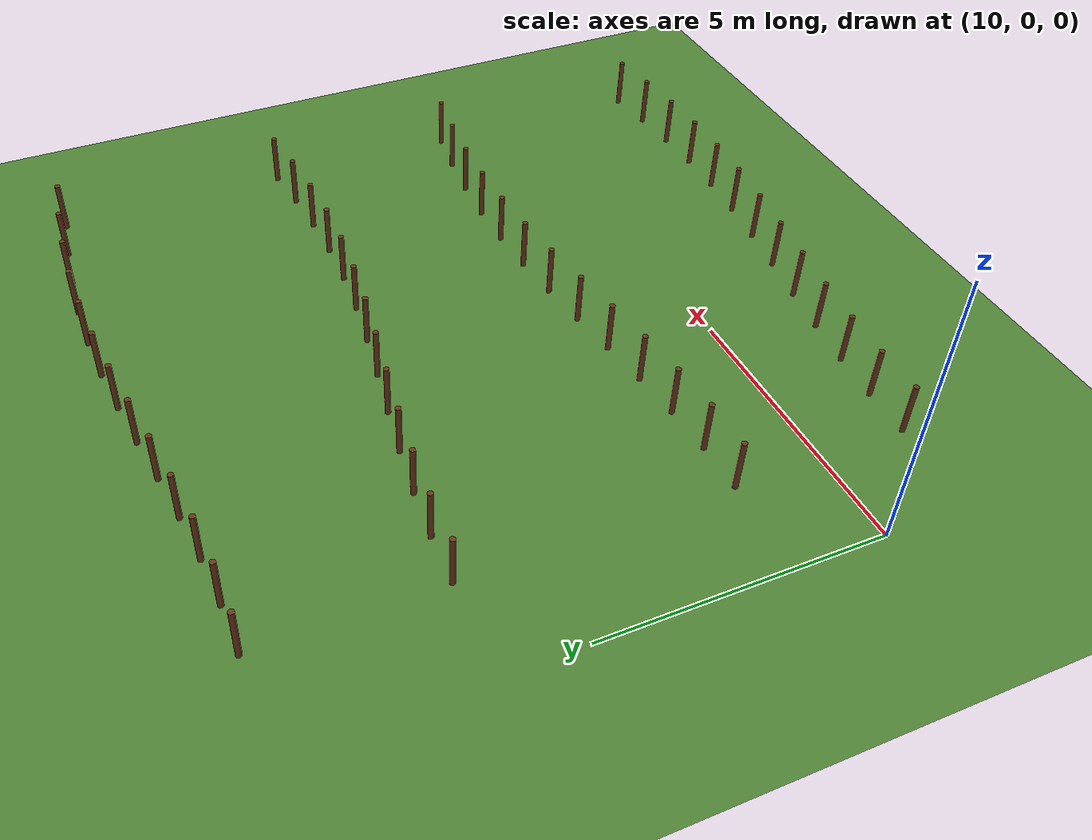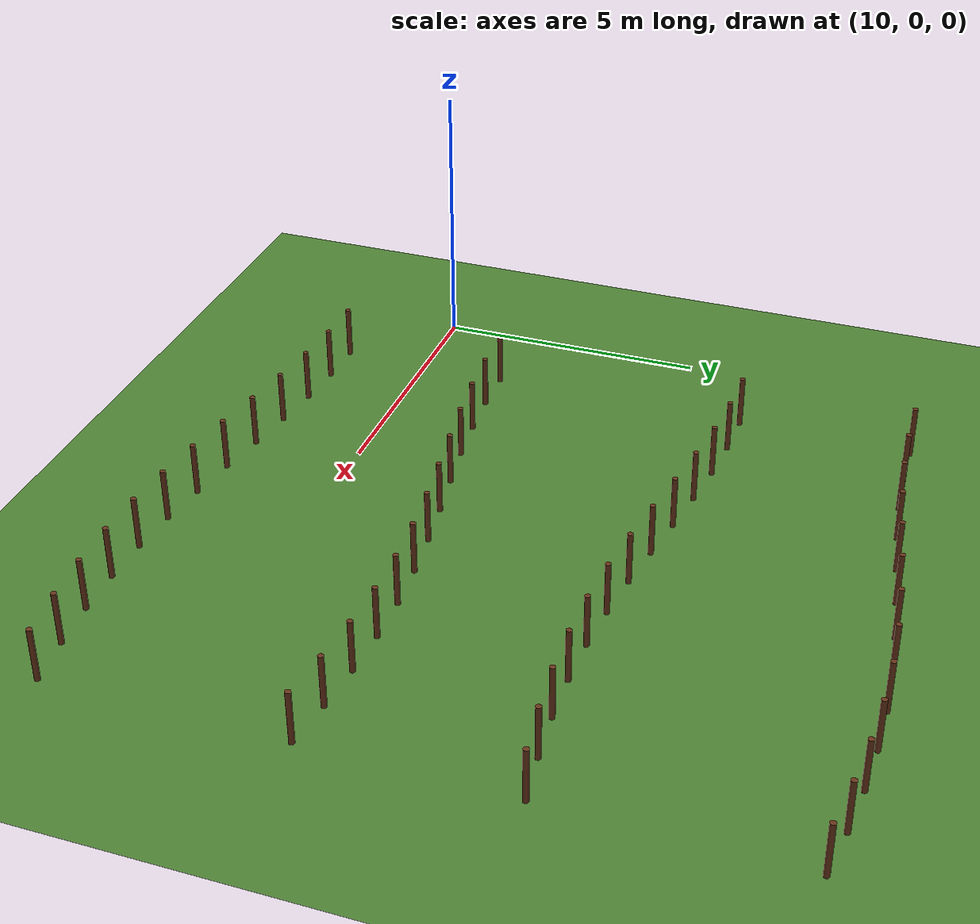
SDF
<sdf version="1.6">
 <world name="vineyard_variable">
  <model name="ground_plane">
   <static>true</static>
   <link name="link">
    <collision name="collision">
     <geometry><plane><normal>0 0 1</normal><size>100 100</size></plane></geometry>
     <surface><friction><ode><mu>100</mu><mu2>50</mu2></ode></friction></surface>
    </collision>
    <visual name="visual">
     <cast_shadows>false</cast_shadows>
     <geometry><plane><normal>0 0 1</normal><size>100 100</size></plane></geometry>
     <material><ambient>0.3 0.5 0.2 1</ambient><diffuse>0.3 0.5 0.2 1</diffuse></material>
    </visual>
   </link>
  </model>
  <model name="vine_13">
   <static>true</static>
   <pose>11.700000000000001 -1.6002097908690864 0.5 0 0 0</pose>
   <link name="link">
    <collision name="collision">
     <geometry><cylinder><radius>0.05</radius><length>1.0</length></cylinder></geometry>
    </collision>
    <visual name="visual">
     <geometry><cylinder><radius>0.05</radius><length>1.0</length></cylinder></geometry>
     <material><ambient>0.4 0.2 0.1 1</ambient><diffuse>0.4 0.2 0.1 1</diffuse></material>
    </visual>
   </link>
  </model>
  <model name="vine_14">
   <static>true</static>
   <pose>12.6 -1.6212744897629563 0.5 0 0 0</pose>
   <link name="link">
    <collision name="collision">
     <geometry><cylinder><radius>0.05</radius><length>1.0</length></cylinder></geometry>
    </collision>
    <visual name="visual">
     <geometry><cylinder><radius>0.05</radius><length>1.0</length></cylinder></geometry>
     <material><ambient>0.4 0.2 0.1 1</ambient><diffuse>0.4 0.2 0.1 1</diffuse></material>
    </visual>
   </link>
  </model>
  <model name="vine_15">
   <static>true</static>
   <pose>13.5 -1.690894204977605 0.5 0 0 0</pose>
   <link name="link">
    <collision name="collision">
     <geometry><cylinder><radius>0.05</radius><length>1.0</length></cylinder></geometry>
    </collision>
    <visual name="visual">
     <geometry><cylinder><radius>0.05</radius><length>1.0</length></cylinder></geometry>
     <material><ambient>0.4 0.2 0.1 1</ambient><diffuse>0.4 0.2 0.1 1</diffuse></material>
    </visual>
   </link>
  </model>
  <model name="vine_16">
   <static>true</static>
   <pose>14.4 -1.8001432467532397 0.5 0 0 0</pose>
   <link name="link">
    <collision name="collision">
     <geometry><cylinder><radius>0.05</radius><length>1.0</length></cylinder></geometry>
    </collision>
    <visual name="visual">
     <geometry><cylinder><radius>0.05</radius><length>1.0</length></cylinder></geometry>
     <material><ambient>0.4 0.2 0.1 1</ambient><diffuse>0.4 0.2 0.1 1</diffuse></material>
    </visual>
   </link>
  </model>
  <model name="vine_17">
   <static>true</static>
   <pose>15.3 -1.9350151939139386 0.5 0 0 0</pose>
   <link name="link">
    <collision name="collision">
     <geometry><cylinder><radius>0.05</radius><length>1.0</length></cylinder></geometry>
    </collision>
    <visual name="visual">
     <geometry><cylinder><radius>0.05</radius><length>1.0</length></cylinder></geometry>
     <material><ambient>0.4 0.2 0.1 1</ambient><diffuse>0.4 0.2 0.1 1</diffuse></material>
    </visual>
   </link>
  </model>
  <model name="vine_18">
   <static>true</static>
   <pose>16.2 -2.0782186060402177 0.5 0 0 0</pose>
   <link name="link">
    <collision name="collision">
     <geometry><cylinder><radius>0.05</radius><length>1.0</length></cylinder></geometry>
    </collision>
    <visual name="visual">
     <geometry><cylinder><radius>0.05</radius><length>1.0</length></cylinder></geometry>
     <material><ambient>0.4 0.2 0.1 1</ambient><diffuse>0.4 0.2 0.1 1</diffuse></material>
    </visual>
   </link>
  </model>
  <model name="vine_19">
   <static>true</static>
   <pose>17.1 -2.211393895977172 0.5 0 0 0</pose>
   <link name="link">
    <collision name="collision">
     <geometry><cylinder><radius>0.05</radius><length>1.0</length></cylinder></geometry>
    </collision>
    <visual name="visual">
     <geometry><cylinder><radius>0.05</radius><length>1.0</length></cylinder></geometry>
     <material><ambient>0.4 0.2 0.1 1</ambient><diffuse>0.4 0.2 0.1 1</diffuse></material>
    </visual>
   </link>
  </model>
  <model name="vine_20">
   <static>true</static>
   <pose>18.0 -2.317467145539661 0.5 0 0 0</pose>
   <link name="link">
    <collision name="collision">
     <geometry><cylinder><radius>0.05</radius><length>1.0</length></cylinder></geometry>
    </collision>
    <visual name="visual">
     <geometry><cylinder><radius>0.05</radius><length>1.0</length></cylinder></geometry>
     <material><ambient>0.4 0.2 0.1 1</ambient><diffuse>0.4 0.2 0.1 1</diffuse></material>
    </visual>
   </link>
  </model>
  <model name="vine_21">
   <static>true</static>
   <pose>18.900000000000002 -2.382839090288167 0.5 0 0 0</pose>
   <link name="link">
    <collision name="collision">
     <geometry><cylinder><radius>0.05</radius><length>1.0</length></cylinder></geometry>
    </collision>
    <visual name="visual">
     <geometry><cylinder><radius>0.05</radius><length>1.0</length></cylinder></geometry>
     <material><ambient>0.4 0.2 0.1 1</ambient><diffuse>0.4 0.2 0.1 1</diffuse></material>
    </visual>
   </link>
  </model>
  <model name="vine_22">
   <static>true</static>
   <pose>19.8 -2.3991286316212297 0.5 0 0 0</pose>
   <link name="link">
    <collision name="collision">
     <geometry><cylinder><radius>0.05</radius><length>1.0</length></cylinder></geometry>
    </collision>
    <visual name="visual">
     <geometry><cylinder><radius>0.05</radius><length>1.0</length></cylinder></geometry>
     <material><ambient>0.4 0.2 0.1 1</ambient><diffuse>0.4 0.2 0.1 1</diffuse></material>
    </visual>
   </link>
  </model>
  <model name="vine_23">
   <static>true</static>
   <pose>20.7 -2.364247346858292 0.5 0 0 0</pose>
   <link name="link">
    <collision name="collision">
     <geometry><cylinder><radius>0.05</radius><length>1.0</length></cylinder></geometry>
    </collision>
    <visual name="visual">
     <geometry><cylinder><radius>0.05</radius><length>1.0</length></cylinder></geometry>
     <material><ambient>0.4 0.2 0.1 1</ambient><diffuse>0.4 0.2 0.1 1</diffuse></material>
    </visual>
   </link>
  </model>
  <model name="vine_24">
   <static>true</static>
   <pose>21.6 -2.2826672382943514 0.5 0 0 0</pose>
   <link name="link">
    <collision name="collision">
     <geometry><cylinder><radius>0.05</radius><length>1.0</length></cylinder></geometry>
    </collision>
    <visual name="visual">
     <geometry><cylinder><radius>0.05</radius><length>1.0</length></cylinder></geometry>
     <material><ambient>0.4 0.2 0.1 1</ambient><diffuse>0.4 0.2 0.1 1</diffuse></material>
    </visual>
   </link>
  </model>
  <model name="vine_25">
   <static>true</static>
   <pose>22.5 -2.164847394096703 0.5 0 0 0</pose>
   <link name="link">
    <collision name="collision">
     <geometry><cylinder><radius>0.05</radius><length>1.0</length></cylinder></geometry>
    </collision>
    <visual name="visual">
     <geometry><cylinder><radius>0.05</radius><length>1.0</length></cylinder></geometry>
     <material><ambient>0.4 0.2 0.1 1</ambient><diffuse>0.4 0.2 0.1 1</diffuse></material>
    </visual>
   </link>
  </model>
  <model name="vine_39">
   <static>true</static>
   <pose>11.700000000000001 1.6002097908690864 0.5 0 0 0</pose>
   <link name="link">
    <collision name="collision">
     <geometry><cylinder><radius>0.05</radius><length>1.0</length></cylinder></geometry>
    </collision>
    <visual name="visual">
     <geometry><cylinder><radius>0.05</radius><length>1.0</length></cylinder></geometry>
     <material><ambient>0.4 0.2 0.1 1</ambient><diffuse>0.4 0.2 0.1 1</diffuse></material>
    </visual>
   </link>
  </model>
  <model name="vine_40">
   <static>true</static>
   <pose>12.6 1.6212744897629565 0.5 0 0 0</pose>
   <link name="link">
    <collision name="collision">
     <geometry><cylinder><radius>0.05</radius><length>1.0</length></cylinder></geometry>
    </collision>
    <visual name="visual">
     <geometry><cylinder><radius>0.05</radius><length>1.0</length></cylinder></geometry>
     <material><ambient>0.4 0.2 0.1 1</ambient><diffuse>0.4 0.2 0.1 1</diffuse></material>
    </visual>
   </link>
  </model>
  <model name="vine_41">
   <static>true</static>
   <pose>13.5 1.6908942049776052 0.5 0 0 0</pose>
   <link name="link">
    <collision name="collision">
     <geometry><cylinder><radius>0.05</radius><length>1.0</length></cylinder></geometry>
    </collision>
    <visual name="visual">
     <geometry><cylinder><radius>0.05</radius><length>1.0</length></cylinder></geometry>
     <material><ambient>0.4 0.2 0.1 1</ambient><diffuse>0.4 0.2 0.1 1</diffuse></material>
    </visual>
   </link>
  </model>
  <model name="vine_42">
   <static>true</static>
   <pose>14.4 1.8001432467532394 0.5 0 0 0</pose>
   <link name="link">
    <collision name="collision">
     <geometry><cylinder><radius>0.05</radius><length>1.0</length></cylinder></geometry>
    </collision>
    <visual name="visual">
     <geometry><cylinder><radius>0.05</radius><length>1.0</length></cylinder></geometry>
     <material><ambient>0.4 0.2 0.1 1</ambient><diffuse>0.4 0.2 0.1 1</diffuse></material>
    </visual>
   </link>
  </model>
  <model name="vine_43">
   <static>true</static>
   <pose>15.3 1.9350151939139386 0.5 0 0 0</pose>
   <link name="link">
    <collision name="collision">
     <geometry><cylinder><radius>0.05</radius><length>1.0</length></cylinder></geometry>
    </collision>
    <visual name="visual">
     <geometry><cylinder><radius>0.05</radius><length>1.0</length></cylinder></geometry>
     <material><ambient>0.4 0.2 0.1 1</ambient><diffuse>0.4 0.2 0.1 1</diffuse></material>
    </visual>
   </link>
  </model>
  <model name="vine_44">
   <static>true</static>
   <pose>16.2 2.0782186060402177 0.5 0 0 0</pose>
   <link name="link">
    <collision name="collision">
     <geometry><cylinder><radius>0.05</radius><length>1.0</length></cylinder></geometry>
    </collision>
    <visual name="visual">
     <geometry><cylinder><radius>0.05</radius><length>1.0</length></cylinder></geometry>
     <material><ambient>0.4 0.2 0.1 1</ambient><diffuse>0.4 0.2 0.1 1</diffuse></material>
    </visual>
   </link>
  </model>
  <model name="vine_45">
   <static>true</static>
   <pose>17.1 2.2113938959771726 0.5 0 0 0</pose>
   <link name="link">
    <collision name="collision">
     <geometry><cylinder><radius>0.05</radius><length>1.0</length></cylinder></geometry>
    </collision>
    <visual name="visual">
     <geometry><cylinder><radius>0.05</radius><length>1.0</length></cylinder></geometry>
     <material><ambient>0.4 0.2 0.1 1</ambient><diffuse>0.4 0.2 0.1 1</diffuse></material>
    </visual>
   </link>
  </model>
  <model name="vine_46">
   <static>true</static>
   <pose>18.0 2.3174671455396614 0.5 0 0 0</pose>
   <link name="link">
    <collision name="collision">
     <geometry><cylinder><radius>0.05</radius><length>1.0</length></cylinder></geometry>
    </collision>
    <visual name="visual">
     <geometry><cylinder><radius>0.05</radius><length>1.0</length></cylinder></geometry>
     <material><ambient>0.4 0.2 0.1 1</ambient><diffuse>0.4 0.2 0.1 1</diffuse></material>
    </visual>
   </link>
  </model>
  <model name="vine_47">
   <static>true</static>
   <pose>18.900000000000002 2.382839090288167 0.5 0 0 0</pose>
   <link name="link">
    <collision name="collision">
     <geometry><cylinder><radius>0.05</radius><length>1.0</length></cylinder></geometry>
    </collision>
    <visual name="visual">
     <geometry><cylinder><radius>0.05</radius><length>1.0</length></cylinder></geometry>
     <material><ambient>0.4 0.2 0.1 1</ambient><diffuse>0.4 0.2 0.1 1</diffuse></material>
    </visual>
   </link>
  </model>
  <model name="vine_48">
   <static>true</static>
   <pose>19.8 2.3991286316212297 0.5 0 0 0</pose>
   <link name="link">
    <collision name="collision">
     <geometry><cylinder><radius>0.05</radius><length>1.0</length></cylinder></geometry>
    </collision>
    <visual name="visual">
     <geometry><cylinder><radius>0.05</radius><length>1.0</length></cylinder></geometry>
     <material><ambient>0.4 0.2 0.1 1</ambient><diffuse>0.4 0.2 0.1 1</diffuse></material>
    </visual>
   </link>
  </model>
  <model name="vine_49">
   <static>true</static>
   <pose>20.7 2.364247346858292 0.5 0 0 0</pose>
   <link name="link">
    <collision name="collision">
     <geometry><cylinder><radius>0.05</radius><length>1.0</length></cylinder></geometry>
    </collision>
    <visual name="visual">
     <geometry><cylinder><radius>0.05</radius><length>1.0</length></cylinder></geometry>
     <material><ambient>0.4 0.2 0.1 1</ambient><diffuse>0.4 0.2 0.1 1</diffuse></material>
    </visual>
   </link>
  </model>
  <model name="vine_50">
   <static>true</static>
   <pose>21.6 2.2826672382943514 0.5 0 0 0</pose>
   <link name="link">
    <collision name="collision">
     <geometry><cylinder><radius>0.05</radius><length>1.0</length></cylinder></geometry>
    </collision>
    <visual name="visual">
     <geometry><cylinder><radius>0.05</radius><length>1.0</length></cylinder></geometry>
     <material><ambient>0.4 0.2 0.1 1</ambient><diffuse>0.4 0.2 0.1 1</diffuse></material>
    </visual>
   </link>
  </model>
  <model name="vine_51">
   <static>true</static>
   <pose>22.5 2.164847394096703 0.5 0 0 0</pose>
   <link name="link">
    <collision name="collision">
     <geometry><cylinder><radius>0.05</radius><length>1.0</length></cylinder></geometry>
    </collision>
    <visual name="visual">
     <geometry><cylinder><radius>0.05</radius><length>1.0</length></cylinder></geometry>
     <material><ambient>0.4 0.2 0.1 1</ambient><diffuse>0.4 0.2 0.1 1</diffuse></material>
    </visual>
   </link>
  </model>
  <model name="vine_65">
   <static>true</static>
   <pose>11.700000000000001 6.399790209130914 0.5 0 0 0</pose>
   <link name="link">
    <collision name="collision">
     <geometry><cylinder><radius>0.05</radius><length>1.0</length></cylinder></geometry>
    </collision>
    <visual name="visual">
     <geometry><cylinder><radius>0.05</radius><length>1.0</length></cylinder></geometry>
     <material><ambient>0.4 0.2 0.1 1</ambient><diffuse>0.4 0.2 0.1 1</diffuse></material>
    </visual>
   </link>
  </model>
  <model name="vine_66">
   <static>true</static>
   <pose>12.6 6.378725510237044 0.5 0 0 0</pose>
   <link name="link">
    <collision name="collision">
     <geometry><cylinder><radius>0.05</radius><length>1.0</length></cylinder></geometry>
    </collision>
    <visual name="visual">
     <geometry><cylinder><radius>0.05</radius><length>1.0</length></cylinder></geometry>
     <material><ambient>0.4 0.2 0.1 1</ambient><diffuse>0.4 0.2 0.1 1</diffuse></material>
    </visual>
   </link>
  </model>
  <model name="vine_67">
   <static>true</static>
   <pose>13.5 6.309105795022395 0.5 0 0 0</pose>
   <link name="link">
    <collision name="collision">
     <geometry><cylinder><radius>0.05</radius><length>1.0</length></cylinder></geometry>
    </collision>
    <visual name="visual">
     <geometry><cylinder><radius>0.05</radius><length>1.0</length></cylinder></geometry>
     <material><ambient>0.4 0.2 0.1 1</ambient><diffuse>0.4 0.2 0.1 1</diffuse></material>
    </visual>
   </link>
  </model>
  <model name="vine_68">
   <static>true</static>
   <pose>14.4 6.1998567532467606 0.5 0 0 0</pose>
   <link name="link">
    <collision name="collision">
     <geometry><cylinder><radius>0.05</radius><length>1.0</length></cylinder></geometry>
    </collision>
    <visual name="visual">
     <geometry><cylinder><radius>0.05</radius><length>1.0</length></cylinder></geometry>
     <material><ambient>0.4 0.2 0.1 1</ambient><diffuse>0.4 0.2 0.1 1</diffuse></material>
    </visual>
   </link>
  </model>
  <model name="vine_69">
   <static>true</static>
   <pose>15.3 6.064984806086061 0.5 0 0 0</pose>
   <link name="link">
    <collision name="collision">
     <geometry><cylinder><radius>0.05</radius><length>1.0</length></cylinder></geometry>
    </collision>
    <visual name="visual">
     <geometry><cylinder><radius>0.05</radius><length>1.0</length></cylinder></geometry>
     <material><ambient>0.4 0.2 0.1 1</ambient><diffuse>0.4 0.2 0.1 1</diffuse></material>
    </visual>
   </link>
  </model>
  <model name="vine_70">
   <static>true</static>
   <pose>16.2 5.921781393959782 0.5 0 0 0</pose>
   <link name="link">
    <collision name="collision">
     <geometry><cylinder><radius>0.05</radius><length>1.0</length></cylinder></geometry>
    </collision>
    <visual name="visual">
     <geometry><cylinder><radius>0.05</radius><length>1.0</length></cylinder></geometry>
     <material><ambient>0.4 0.2 0.1 1</ambient><diffuse>0.4 0.2 0.1 1</diffuse></material>
    </visual>
   </link>
  </model>
  <model name="vine_71">
   <static>true</static>
   <pose>17.1 5.788606104022827 0.5 0 0 0</pose>
   <link name="link">
    <collision name="collision">
     <geometry><cylinder><radius>0.05</radius><length>1.0</length></cylinder></geometry>
    </collision>
    <visual name="visual">
     <geometry><cylinder><radius>0.05</radius><length>1.0</length></cylinder></geometry>
     <material><ambient>0.4 0.2 0.1 1</ambient><diffuse>0.4 0.2 0.1 1</diffuse></material>
    </visual>
   </link>
  </model>
  <model name="vine_72">
   <static>true</static>
   <pose>18.0 5.682532854460339 0.5 0 0 0</pose>
   <link name="link">
    <collision name="collision">
     <geometry><cylinder><radius>0.05</radius><length>1.0</length></cylinder></geometry>
    </collision>
    <visual name="visual">
     <geometry><cylinder><radius>0.05</radius><length>1.0</length></cylinder></geometry>
     <material><ambient>0.4 0.2 0.1 1</ambient><diffuse>0.4 0.2 0.1 1</diffuse></material>
    </visual>
   </link>
  </model>
  <model name="vine_73">
   <static>true</static>
   <pose>18.900000000000002 5.617160909711833 0.5 0 0 0</pose>
   <link name="link">
    <collision name="collision">
     <geometry><cylinder><radius>0.05</radius><length>1.0</length></cylinder></geometry>
    </collision>
    <visual name="visual">
     <geometry><cylinder><radius>0.05</radius><length>1.0</length></cylinder></geometry>
     <material><ambient>0.4 0.2 0.1 1</ambient><diffuse>0.4 0.2 0.1 1</diffuse></material>
    </visual>
   </link>
  </model>
  <model name="vine_74">
   <static>true</static>
   <pose>19.8 5.600871368378771 0.5 0 0 0</pose>
   <link name="link">
    <collision name="collision">
     <geometry><cylinder><radius>0.05</radius><length>1.0</length></cylinder></geometry>
    </collision>
    <visual name="visual">
     <geometry><cylinder><radius>0.05</radius><length>1.0</length></cylinder></geometry>
     <material><ambient>0.4 0.2 0.1 1</ambient><diffuse>0.4 0.2 0.1 1</diffuse></material>
    </visual>
   </link>
  </model>
  <model name="vine_75">
   <static>true</static>
   <pose>20.7 5.635752653141708 0.5 0 0 0</pose>
   <link name="link">
    <collision name="collision">
     <geometry><cylinder><radius>0.05</radius><length>1.0</length></cylinder></geometry>
    </collision>
    <visual name="visual">
     <geometry><cylinder><radius>0.05</radius><length>1.0</length></cylinder></geometry>
     <material><ambient>0.4 0.2 0.1 1</ambient><diffuse>0.4 0.2 0.1 1</diffuse></material>
    </visual>
   </link>
  </model>
  <model name="vine_76">
   <static>true</static>
   <pose>21.6 5.717332761705649 0.5 0 0 0</pose>
   <link name="link">
    <collision name="collision">
     <geometry><cylinder><radius>0.05</radius><length>1.0</length></cylinder></geometry>
    </collision>
    <visual name="visual">
     <geometry><cylinder><radius>0.05</radius><length>1.0</length></cylinder></geometry>
     <material><ambient>0.4 0.2 0.1 1</ambient><diffuse>0.4 0.2 0.1 1</diffuse></material>
    </visual>
   </link>
  </model>
  <model name="vine_77">
   <static>true</static>
   <pose>22.5 5.835152605903297 0.5 0 0 0</pose>
   <link name="link">
    <collision name="collision">
     <geometry><cylinder><radius>0.05</radius><length>1.0</length></cylinder></geometry>
    </collision>
    <visual name="visual">
     <geometry><cylinder><radius>0.05</radius><length>1.0</length></cylinder></geometry>
     <material><ambient>0.4 0.2 0.1 1</ambient><diffuse>0.4 0.2 0.1 1</diffuse></material>
    </visual>
   </link>
  </model>
  <model name="vine_91">
   <static>true</static>
   <pose>11.700000000000001 9.600209790869087 0.5 0 0 0</pose>
   <link name="link">
    <collision name="collision">
     <geometry><cylinder><radius>0.05</radius><length>1.0</length></cylinder></geometry>
    </collision>
    <visual name="visual">
     <geometry><cylinder><radius>0.05</radius><length>1.0</length></cylinder></geometry>
     <material><ambient>0.4 0.2 0.1 1</ambient><diffuse>0.4 0.2 0.1 1</diffuse></material>
    </visual>
   </link>
  </model>
  <model name="vine_92">
   <static>true</static>
   <pose>12.6 9.621274489762957 0.5 0 0 0</pose>
   <link name="link">
    <collision name="collision">
     <geometry><cylinder><radius>0.05</radius><length>1.0</length></cylinder></geometry>
    </collision>
    <visual name="visual">
     <geometry><cylinder><radius>0.05</radius><length>1.0</length></cylinder></geometry>
     <material><ambient>0.4 0.2 0.1 1</ambient><diffuse>0.4 0.2 0.1 1</diffuse></material>
    </visual>
   </link>
  </model>
  <model name="vine_93">
   <static>true</static>
   <pose>13.5 9.690894204977605 0.5 0 0 0</pose>
   <link name="link">
    <collision name="collision">
     <geometry><cylinder><radius>0.05</radius><length>1.0</length></cylinder></geometry>
    </collision>
    <visual name="visual">
     <geometry><cylinder><radius>0.05</radius><length>1.0</length></cylinder></geometry>
     <material><ambient>0.4 0.2 0.1 1</ambient><diffuse>0.4 0.2 0.1 1</diffuse></material>
    </visual>
   </link>
  </model>
  <model name="vine_94">
   <static>true</static>
   <pose>14.4 9.800143246753239 0.5 0 0 0</pose>
   <link name="link">
    <collision name="collision">
     <geometry><cylinder><radius>0.05</radius><length>1.0</length></cylinder></geometry>
    </collision>
    <visual name="visual">
     <geometry><cylinder><radius>0.05</radius><length>1.0</length></cylinder></geometry>
     <material><ambient>0.4 0.2 0.1 1</ambient><diffuse>0.4 0.2 0.1 1</diffuse></material>
    </visual>
   </link>
  </model>
  <model name="vine_95">
   <static>true</static>
   <pose>15.3 9.935015193913939 0.5 0 0 0</pose>
   <link name="link">
    <collision name="collision">
     <geometry><cylinder><radius>0.05</radius><length>1.0</length></cylinder></geometry>
    </collision>
    <visual name="visual">
     <geometry><cylinder><radius>0.05</radius><length>1.0</length></cylinder></geometry>
     <material><ambient>0.4 0.2 0.1 1</ambient><diffuse>0.4 0.2 0.1 1</diffuse></material>
    </visual>
   </link>
  </model>
  <model name="vine_96">
   <static>true</static>
   <pose>16.2 10.078218606040219 0.5 0 0 0</pose>
   <link name="link">
    <collision name="collision">
     <geometry><cylinder><radius>0.05</radius><length>1.0</length></cylinder></geometry>
    </collision>
    <visual name="visual">
     <geometry><cylinder><radius>0.05</radius><length>1.0</length></cylinder></geometry>
     <material><ambient>0.4 0.2 0.1 1</ambient><diffuse>0.4 0.2 0.1 1</diffuse></material>
    </visual>
   </link>
  </model>
  <model name="vine_97">
   <static>true</static>
   <pose>17.1 10.211393895977173 0.5 0 0 0</pose>
   <link name="link">
    <collision name="collision">
     <geometry><cylinder><radius>0.05</radius><length>1.0</length></cylinder></geometry>
    </collision>
    <visual name="visual">
     <geometry><cylinder><radius>0.05</radius><length>1.0</length></cylinder></geometry>
     <material><ambient>0.4 0.2 0.1 1</ambient><diffuse>0.4 0.2 0.1 1</diffuse></material>
    </visual>
   </link>
  </model>
  <model name="vine_98">
   <static>true</static>
   <pose>18.0 10.317467145539661 0.5 0 0 0</pose>
   <link name="link">
    <collision name="collision">
     <geometry><cylinder><radius>0.05</radius><length>1.0</length></cylinder></geometry>
    </collision>
    <visual name="visual">
     <geometry><cylinder><radius>0.05</radius><length>1.0</length></cylinder></geometry>
     <material><ambient>0.4 0.2 0.1 1</ambient><diffuse>0.4 0.2 0.1 1</diffuse></material>
    </visual>
   </link>
  </model>
  <model name="vine_99">
   <static>true</static>
   <pose>18.900000000000002 10.382839090288167 0.5 0 0 0</pose>
   <link name="link">
    <collision name="collision">
     <geometry><cylinder><radius>0.05</radius><length>1.0</length></cylinder></geometry>
    </collision>
    <visual name="visual">
     <geometry><cylinder><radius>0.05</radius><length>1.0</length></cylinder></geometry>
     <material><ambient>0.4 0.2 0.1 1</ambient><diffuse>0.4 0.2 0.1 1</diffuse></material>
    </visual>
   </link>
  </model>
  <model name="vine_100">
   <static>true</static>
   <pose>19.8 10.39912863162123 0.5 0 0 0</pose>
   <link name="link">
    <collision name="collision">
     <geometry><cylinder><radius>0.05</radius><length>1.0</length></cylinder></geometry>
    </collision>
    <visual name="visual">
     <geometry><cylinder><radius>0.05</radius><length>1.0</length></cylinder></geometry>
     <material><ambient>0.4 0.2 0.1 1</ambient><diffuse>0.4 0.2 0.1 1</diffuse></material>
    </visual>
   </link>
  </model>
  <model name="vine_101">
   <static>true</static>
   <pose>20.7 10.364247346858292 0.5 0 0 0</pose>
   <link name="link">
    <collision name="collision">
     <geometry><cylinder><radius>0.05</radius><length>1.0</length></cylinder></geometry>
    </collision>
    <visual name="visual">
     <geometry><cylinder><radius>0.05</radius><length>1.0</length></cylinder></geometry>
     <material><ambient>0.4 0.2 0.1 1</ambient><diffuse>0.4 0.2 0.1 1</diffuse></material>
    </visual>
   </link>
  </model>
  <model name="vine_102">
   <static>true</static>
   <pose>21.6 10.282667238294351 0.5 0 0 0</pose>
   <link name="link">
    <collision name="collision">
     <geometry><cylinder><radius>0.05</radius><length>1.0</length></cylinder></geometry>
    </collision>
    <visual name="visual">
     <geometry><cylinder><radius>0.05</radius><length>1.0</length></cylinder></geometry>
     <material><ambient>0.4 0.2 0.1 1</ambient><diffuse>0.4 0.2 0.1 1</diffuse></material>
    </visual>
   </link>
  </model>
  <model name="vine_103">
   <static>true</static>
   <pose>22.5 10.164847394096702 0.5 0 0 0</pose>
   <link name="link">
    <collision name="collision">
     <geometry><cylinder><radius>0.05</radius><length>1.0</length></cylinder></geometry>
    </collision>
    <visual name="visual">
     <geometry><cylinder><radius>0.05</radius><length>1.0</length></cylinder></geometry>
     <material><ambient>0.4 0.2 0.1 1</ambient><diffuse>0.4 0.2 0.1 1</diffuse></material>
    </visual>
   </link>
  </model>
 </world>
</sdf>
